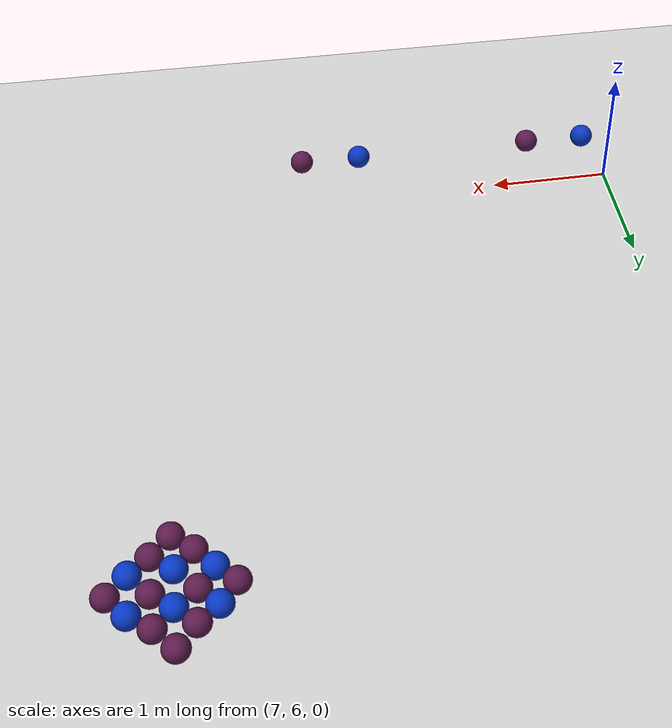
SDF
<sdf version="1.7">
 <world name="default">
  <model name="ground_plane">
   <static>1</static>
   <link name="link">
    <collision name="collision">
     <geometry><plane><normal>0 0 1</normal><size>100 100</size></plane></geometry>
     <surface>
      <contact><collide_bitmask>65535</collide_bitmask></contact>
      <friction><ode><mu>100</mu><mu2>50</mu2></ode></friction>
     </surface>
    </collision>
    <visual name="visual">
     <cast_shadows>0</cast_shadows>
     <geometry><plane><normal>0 0 1</normal><size>100 100</size></plane></geometry>
     <material>
      <script><uri>file://media/materials/scripts/gazebo.material</uri><name>Gazebo/Grey</name></script>
     </material>
    </visual>
   </link>
  </model>
  <model name="ball_empty_clone_5">
   <link name="link_1">
    <inertial>
     <mass>1</mass>
     <inertia>
      <ixx>0.166667</ixx>
      <ixy>0</ixy>
      <ixz>0</ixz>
      <iyy>0.166667</iyy>
      <iyz>0</iyz>
      <izz>0.166667</izz>
     </inertia>
    </inertial>
    <visual name="visual">
     <geometry>
      <mesh>
       <uri>/home/entity014/abu2024_ws/src/abu_description/worlds/ball_empty.dae</uri>
       <scale>1 1 1</scale>
      </mesh>
     </geometry>
    </visual>
    <collision name="collision">
     <geometry>
      <mesh>
       <uri>/home/entity014/abu2024_ws/src/abu_description/worlds/ball_empty.dae</uri>
       <scale>1 1 1</scale>
      </mesh>
     </geometry>
     <surface>
      <friction>
       <ode><mu>1</mu><mu2>1</mu2><fdir1>0 0 0</fdir1><slip1>0</slip1><slip2>0</slip2></ode>
       <torsional>
        <coefficient>1</coefficient>
        <patch_radius>0</patch_radius>
        <surface_radius>0</surface_radius>
        <use_patch_radius>1</use_patch_radius>
        <ode><slip>0</slip></ode>
       </torsional>
      </friction>
      <bounce><restitution_coefficient>0</restitution_coefficient><threshold>1e+06</threshold></bounce>
      <contact>
       <collide_without_contact>0</collide_without_contact>
       <collide_without_contact_bitmask>1</collide_without_contact_bitmask>
       <collide_bitmask>1</collide_bitmask>
       <ode>
        <soft_cfm>0</soft_cfm>
        <soft_erp>0.2</soft_erp>
        <kp>1e+13</kp>
        <kd>1</kd>
        <max_vel>0.01</max_vel>
        <min_depth>0</min_depth>
       </ode>
       <bullet>
        <split_impulse>1</split_impulse>
        <split_impulse_penetration_threshold>-0.01</split_impulse_penetration_threshold>
        <soft_cfm>0</soft_cfm>
        <soft_erp>0.2</soft_erp>
        <kp>1e+13</kp>
        <kd>1</kd>
       </bullet>
      </contact>
     </surface>
    </collision>
   </link>
   <static>0</static>
   <pose>7.68401 5.79175 0.302543 -0.110681 -0.048625 -0.128901</pose>
  </model>
  <model name="ball_empty_clone_9">
   <link name="link_1">
    <inertial>
     <mass>1</mass>
     <inertia>
      <ixx>0.166667</ixx>
      <ixy>0</ixy>
      <ixz>0</ixz>
      <iyy>0.166667</iyy>
      <iyz>0</iyz>
      <izz>0.166667</izz>
     </inertia>
    </inertial>
    <visual name="visual">
     <geometry>
      <mesh>
       <uri>/home/entity014/abu2024_ws/src/abu_description/worlds/ball_empty.dae</uri>
       <scale>1 1 1</scale>
      </mesh>
     </geometry>
    </visual>
    <collision name="collision">
     <geometry>
      <mesh>
       <uri>/home/entity014/abu2024_ws/src/abu_description/worlds/ball_empty.dae</uri>
       <scale>1 1 1</scale>
      </mesh>
     </geometry>
     <surface>
      <friction>
       <ode><mu>1</mu><mu2>1</mu2><fdir1>0 0 0</fdir1><slip1>0</slip1><slip2>0</slip2></ode>
       <torsional>
        <coefficient>1</coefficient>
        <patch_radius>0</patch_radius>
        <surface_radius>0</surface_radius>
        <use_patch_radius>1</use_patch_radius>
        <ode><slip>0</slip></ode>
       </torsional>
      </friction>
      <bounce><restitution_coefficient>0</restitution_coefficient><threshold>1e+06</threshold></bounce>
      <contact>
       <collide_without_contact>0</collide_without_contact>
       <collide_without_contact_bitmask>1</collide_without_contact_bitmask>
       <collide_bitmask>1</collide_bitmask>
       <ode>
        <soft_cfm>0</soft_cfm>
        <soft_erp>0.2</soft_erp>
        <kp>1e+13</kp>
        <kd>1</kd>
        <max_vel>0.01</max_vel>
        <min_depth>0</min_depth>
       </ode>
       <bullet>
        <split_impulse>1</split_impulse>
        <split_impulse_penetration_threshold>-0.01</split_impulse_penetration_threshold>
        <soft_cfm>0</soft_cfm>
        <soft_erp>0.2</soft_erp>
        <kp>1e+13</kp>
        <kd>1</kd>
       </bullet>
      </contact>
     </surface>
    </collision>
   </link>
   <static>0</static>
   <pose>9.6825 5.79113 0.302549 -0.140097 0.339126 -0.093323</pose>
  </model>
  <model name="ball_blue">
   <link name="link_1">
    <inertial>
     <mass>1</mass>
     <inertia>
      <ixx>0.166667</ixx>
      <ixy>0</ixy>
      <ixz>0</ixz>
      <iyy>0.166667</iyy>
      <iyz>0</iyz>
      <izz>0.166667</izz>
     </inertia>
    </inertial>
    <visual name="visual">
     <geometry>
      <mesh>
       <uri>/home/entity014/abu2024_ws/src/abu_description/worlds/ball_blue.dae</uri>
       <scale>1 1 1</scale>
      </mesh>
     </geometry>
    </visual>
    <collision name="collision">
     <geometry>
      <mesh>
       <uri>/home/entity014/abu2024_ws/src/abu_description/worlds/ball_blue.dae</uri>
       <scale>1 1 1</scale>
      </mesh>
     </geometry>
     <surface>
      <friction>
       <ode><mu>1</mu><mu2>1</mu2><fdir1>0 0 0</fdir1><slip1>0</slip1><slip2>0</slip2></ode>
       <torsional>
        <coefficient>1</coefficient>
        <patch_radius>0</patch_radius>
        <surface_radius>0</surface_radius>
        <use_patch_radius>1</use_patch_radius>
        <ode><slip>0</slip></ode>
       </torsional>
      </friction>
      <bounce><restitution_coefficient>0</restitution_coefficient><threshold>1e+06</threshold></bounce>
      <contact>
       <collide_without_contact>0</collide_without_contact>
       <collide_without_contact_bitmask>1</collide_without_contact_bitmask>
       <collide_bitmask>1</collide_bitmask>
       <ode>
        <soft_cfm>0</soft_cfm>
        <soft_erp>0.2</soft_erp>
        <kp>1e+13</kp>
        <kd>1</kd>
        <max_vel>0.01</max_vel>
        <min_depth>0</min_depth>
       </ode>
       <bullet>
        <split_impulse>1</split_impulse>
        <split_impulse_penetration_threshold>-0.01</split_impulse_penetration_threshold>
        <soft_cfm>0</soft_cfm>
        <soft_erp>0.2</soft_erp>
        <kp>1e+13</kp>
        <kd>1</kd>
       </bullet>
      </contact>
     </surface>
    </collision>
   </link>
   <static>0</static>
   <pose>7.18296 5.79373 0.302552 0.094885 -0.071424 0.035462</pose>
  </model>
  <model name="ball_blue_4">
   <link name="link_1">
    <inertial>
     <mass>1</mass>
     <inertia>
      <ixx>0.166667</ixx>
      <ixy>0</ixy>
      <ixz>0</ixz>
      <iyy>0.166667</iyy>
      <iyz>0</iyz>
      <izz>0.166667</izz>
     </inertia>
    </inertial>
    <visual name="visual">
     <geometry>
      <mesh>
       <uri>/home/entity014/abu2024_ws/src/abu_description/worlds/ball_blue.dae</uri>
       <scale>1 1 1</scale>
      </mesh>
     </geometry>
    </visual>
    <collision name="collision">
     <geometry>
      <mesh>
       <uri>/home/entity014/abu2024_ws/src/abu_description/worlds/ball_blue.dae</uri>
       <scale>1 1 1</scale>
      </mesh>
     </geometry>
     <surface>
      <friction>
       <ode><mu>1</mu><mu2>1</mu2><fdir1>0 0 0</fdir1><slip1>0</slip1><slip2>0</slip2></ode>
       <torsional>
        <coefficient>1</coefficient>
        <patch_radius>0</patch_radius>
        <surface_radius>0</surface_radius>
        <use_patch_radius>1</use_patch_radius>
        <ode><slip>0</slip></ode>
       </torsional>
      </friction>
      <bounce><restitution_coefficient>0</restitution_coefficient><threshold>1e+06</threshold></bounce>
      <contact>
       <collide_without_contact>0</collide_without_contact>
       <collide_without_contact_bitmask>1</collide_without_contact_bitmask>
       <collide_bitmask>1</collide_bitmask>
       <ode>
        <soft_cfm>0</soft_cfm>
        <soft_erp>0.2</soft_erp>
        <kp>1e+13</kp>
        <kd>1</kd>
        <max_vel>0.01</max_vel>
        <min_depth>0</min_depth>
       </ode>
       <bullet>
        <split_impulse>1</split_impulse>
        <split_impulse_penetration_threshold>-0.01</split_impulse_penetration_threshold>
        <soft_cfm>0</soft_cfm>
        <soft_erp>0.2</soft_erp>
        <kp>1e+13</kp>
        <kd>1</kd>
       </bullet>
      </contact>
     </surface>
    </collision>
   </link>
   <static>0</static>
   <pose>9.18428 5.79164 0.302585 0.186038 0.031234 -0.476511</pose>
  </model>
  <model name="ball_empty_0">
   <link name="link_1">
    <inertial>
     <mass>1</mass>
     <inertia>
      <ixx>0.166667</ixx>
      <ixy>0</ixy>
      <ixz>0</ixz>
      <iyy>0.166667</iyy>
      <iyz>0</iyz>
      <izz>0.166667</izz>
     </inertia>
    </inertial>
    <visual name="visual">
     <geometry>
      <mesh>
       <uri>/home/entity014/abu2024_ws/src/abu_description/worlds/ball_empty.dae</uri>
       <scale>1 1 1</scale>
      </mesh>
     </geometry>
    </visual>
    <collision name="collision">
     <geometry>
      <mesh>
       <uri>/home/entity014/abu2024_ws/src/abu_description/worlds/ball_empty.dae</uri>
       <scale>1 1 1</scale>
      </mesh>
     </geometry>
     <surface>
      <friction>
       <ode><mu>1</mu><mu2>1</mu2><fdir1>0 0 0</fdir1><slip1>0</slip1><slip2>0</slip2></ode>
       <torsional>
        <coefficient>1</coefficient>
        <patch_radius>0</patch_radius>
        <surface_radius>0</surface_radius>
        <use_patch_radius>1</use_patch_radius>
        <ode><slip>0</slip></ode>
       </torsional>
      </friction>
      <bounce><restitution_coefficient>0</restitution_coefficient><threshold>1e+06</threshold></bounce>
      <contact>
       <collide_without_contact>0</collide_without_contact>
       <collide_without_contact_bitmask>1</collide_without_contact_bitmask>
       <collide_bitmask>1</collide_bitmask>
       <ode>
        <soft_cfm>0</soft_cfm>
        <soft_erp>0.2</soft_erp>
        <kp>1e+13</kp>
        <kd>1</kd>
        <max_vel>0.01</max_vel>
        <min_depth>0</min_depth>
       </ode>
       <bullet>
        <split_impulse>1</split_impulse>
        <split_impulse_penetration_threshold>-0.01</split_impulse_penetration_threshold>
        <soft_cfm>0</soft_cfm>
        <soft_erp>0.2</soft_erp>
        <kp>1e+13</kp>
        <kd>1</kd>
       </bullet>
      </contact>
     </surface>
    </collision>
   </link>
   <static>0</static>
   <pose>10.9343 9.60797 0.32261 0.227736 -0.021857 -0.010014</pose>
  </model>
  <model name="ball_blue_5">
   <link name="link_1">
    <inertial>
     <mass>1</mass>
     <inertia>
      <ixx>0.166667</ixx>
      <ixy>0</ixy>
      <ixz>0</ixz>
      <iyy>0.166667</iyy>
      <iyz>0</iyz>
      <izz>0.166667</izz>
     </inertia>
    </inertial>
    <visual name="visual">
     <geometry>
      <mesh>
       <uri>/home/entity014/abu2024_ws/src/abu_description/worlds/ball_blue.dae</uri>
       <scale>1 1 1</scale>
      </mesh>
     </geometry>
    </visual>
    <collision name="collision">
     <geometry>
      <mesh>
       <uri>/home/entity014/abu2024_ws/src/abu_description/worlds/ball_blue.dae</uri>
       <scale>1 1 1</scale>
      </mesh>
     </geometry>
     <surface>
      <friction>
       <ode><mu>1</mu><mu2>1</mu2><fdir1>0 0 0</fdir1><slip1>0</slip1><slip2>0</slip2></ode>
       <torsional>
        <coefficient>1</coefficient>
        <patch_radius>0</patch_radius>
        <surface_radius>0</surface_radius>
        <use_patch_radius>1</use_patch_radius>
        <ode><slip>0</slip></ode>
       </torsional>
      </friction>
      <bounce><restitution_coefficient>0</restitution_coefficient><threshold>1e+06</threshold></bounce>
      <contact>
       <collide_without_contact>0</collide_without_contact>
       <collide_without_contact_bitmask>1</collide_without_contact_bitmask>
       <collide_bitmask>1</collide_bitmask>
       <ode>
        <soft_cfm>0</soft_cfm>
        <soft_erp>0.2</soft_erp>
        <kp>1e+13</kp>
        <kd>1</kd>
        <max_vel>0.01</max_vel>
        <min_depth>0</min_depth>
       </ode>
       <bullet>
        <split_impulse>1</split_impulse>
        <split_impulse_penetration_threshold>-0.01</split_impulse_penetration_threshold>
        <soft_cfm>0</soft_cfm>
        <soft_erp>0.2</soft_erp>
        <kp>1e+13</kp>
        <kd>1</kd>
       </bullet>
      </contact>
     </surface>
    </collision>
   </link>
   <static>0</static>
   <pose>11.2218 9.87692 0.322593 0.184334 0.014428 -0.040587</pose>
  </model>
  <model name="ball_empty_0_clone">
   <link name="link_1">
    <inertial>
     <mass>1</mass>
     <inertia>
      <ixx>0.166667</ixx>
      <ixy>0</ixy>
      <ixz>0</ixz>
      <iyy>0.166667</iyy>
      <iyz>0</iyz>
      <izz>0.166667</izz>
     </inertia>
    </inertial>
    <visual name="visual">
     <geometry>
      <mesh>
       <uri>/home/entity014/abu2024_ws/src/abu_description/worlds/ball_empty.dae</uri>
       <scale>1 1 1</scale>
      </mesh>
     </geometry>
    </visual>
    <collision name="collision">
     <geometry>
      <mesh>
       <uri>/home/entity014/abu2024_ws/src/abu_description/worlds/ball_empty.dae</uri>
       <scale>1 1 1</scale>
      </mesh>
     </geometry>
     <surface>
      <friction>
       <ode><mu>1</mu><mu2>1</mu2><fdir1>0 0 0</fdir1><slip1>0</slip1><slip2>0</slip2></ode>
       <torsional>
        <coefficient>1</coefficient>
        <patch_radius>0</patch_radius>
        <surface_radius>0</surface_radius>
        <use_patch_radius>1</use_patch_radius>
        <ode><slip>0</slip></ode>
       </torsional>
      </friction>
      <bounce><restitution_coefficient>0</restitution_coefficient><threshold>1e+06</threshold></bounce>
      <contact>
       <collide_without_contact>0</collide_without_contact>
       <collide_without_contact_bitmask>1</collide_without_contact_bitmask>
       <collide_bitmask>1</collide_bitmask>
       <ode>
        <soft_cfm>0</soft_cfm>
        <soft_erp>0.2</soft_erp>
        <kp>1e+13</kp>
        <kd>1</kd>
        <max_vel>0.01</max_vel>
        <min_depth>0</min_depth>
       </ode>
       <bullet>
        <split_impulse>1</split_impulse>
        <split_impulse_penetration_threshold>-0.01</split_impulse_penetration_threshold>
        <soft_cfm>0</soft_cfm>
        <soft_erp>0.2</soft_erp>
        <kp>1e+13</kp>
        <kd>1</kd>
       </bullet>
      </contact>
     </surface>
    </collision>
   </link>
   <static>0</static>
   <pose>10.7866 9.73567 0.322547 0.200436 -0.000117 0.009581</pose>
  </model>
  <model name="ball_empty_0_clone_0">
   <link name="link_1">
    <inertial>
     <mass>1</mass>
     <inertia>
      <ixx>0.166667</ixx>
      <ixy>0</ixy>
      <ixz>0</ixz>
      <iyy>0.166667</iyy>
      <iyz>0</iyz>
      <izz>0.166667</izz>
     </inertia>
    </inertial>
    <visual name="visual">
     <geometry>
      <mesh>
       <uri>/home/entity014/abu2024_ws/src/abu_description/worlds/ball_empty.dae</uri>
       <scale>1 1 1</scale>
      </mesh>
     </geometry>
    </visual>
    <collision name="collision">
     <geometry>
      <mesh>
       <uri>/home/entity014/abu2024_ws/src/abu_description/worlds/ball_empty.dae</uri>
       <scale>1 1 1</scale>
      </mesh>
     </geometry>
     <surface>
      <friction>
       <ode><mu>1</mu><mu2>1</mu2><fdir1>0 0 0</fdir1><slip1>0</slip1><slip2>0</slip2></ode>
       <torsional>
        <coefficient>1</coefficient>
        <patch_radius>0</patch_radius>
        <surface_radius>0</surface_radius>
        <use_patch_radius>1</use_patch_radius>
        <ode><slip>0</slip></ode>
       </torsional>
      </friction>
      <bounce><restitution_coefficient>0</restitution_coefficient><threshold>1e+06</threshold></bounce>
      <contact>
       <collide_without_contact>0</collide_without_contact>
       <collide_without_contact_bitmask>1</collide_without_contact_bitmask>
       <collide_bitmask>1</collide_bitmask>
       <ode>
        <soft_cfm>0</soft_cfm>
        <soft_erp>0.2</soft_erp>
        <kp>1e+13</kp>
        <kd>1</kd>
        <max_vel>0.01</max_vel>
        <min_depth>0</min_depth>
       </ode>
       <bullet>
        <split_impulse>1</split_impulse>
        <split_impulse_penetration_threshold>-0.01</split_impulse_penetration_threshold>
        <soft_cfm>0</soft_cfm>
        <soft_erp>0.2</soft_erp>
        <kp>1e+13</kp>
        <kd>1</kd>
       </bullet>
      </contact>
     </surface>
    </collision>
   </link>
   <static>0</static>
   <pose>11.0763 9.75498 0.322573 0.038859 0.024224 0.040431</pose>
  </model>
  <model name="ball_empty_0_clone_1">
   <link name="link_1">
    <inertial>
     <mass>1</mass>
     <inertia>
      <ixx>0.166667</ixx>
      <ixy>0</ixy>
      <ixz>0</ixz>
      <iyy>0.166667</iyy>
      <iyz>0</iyz>
      <izz>0.166667</izz>
     </inertia>
    </inertial>
    <visual name="visual">
     <geometry>
      <mesh>
       <uri>/home/entity014/abu2024_ws/src/abu_description/worlds/ball_empty.dae</uri>
       <scale>1 1 1</scale>
      </mesh>
     </geometry>
    </visual>
    <collision name="collision">
     <geometry>
      <mesh>
       <uri>/home/entity014/abu2024_ws/src/abu_description/worlds/ball_empty.dae</uri>
       <scale>1 1 1</scale>
      </mesh>
     </geometry>
     <surface>
      <friction>
       <ode><mu>1</mu><mu2>1</mu2><fdir1>0 0 0</fdir1><slip1>0</slip1><slip2>0</slip2></ode>
       <torsional>
        <coefficient>1</coefficient>
        <patch_radius>0</patch_radius>
        <surface_radius>0</surface_radius>
        <use_patch_radius>1</use_patch_radius>
        <ode><slip>0</slip></ode>
       </torsional>
      </friction>
      <bounce><restitution_coefficient>0</restitution_coefficient><threshold>1e+06</threshold></bounce>
      <contact>
       <collide_without_contact>0</collide_without_contact>
       <collide_without_contact_bitmask>1</collide_without_contact_bitmask>
       <collide_bitmask>1</collide_bitmask>
       <ode>
        <soft_cfm>0</soft_cfm>
        <soft_erp>0.2</soft_erp>
        <kp>1e+13</kp>
        <kd>1</kd>
        <max_vel>0.01</max_vel>
        <min_depth>0</min_depth>
       </ode>
       <bullet>
        <split_impulse>1</split_impulse>
        <split_impulse_penetration_threshold>-0.01</split_impulse_penetration_threshold>
        <soft_cfm>0</soft_cfm>
        <soft_erp>0.2</soft_erp>
        <kp>1e+13</kp>
        <kd>1</kd>
       </bullet>
      </contact>
     </surface>
    </collision>
   </link>
   <static>0</static>
   <pose>10.5186 10.0179 0.32258 0.303791 0.171598 0.360455</pose>
  </model>
  <model name="ball_empty_0_clone_2">
   <link name="link_1">
    <inertial>
     <mass>1</mass>
     <inertia>
      <ixx>0.166667</ixx>
      <ixy>0</ixy>
      <ixz>0</ixz>
      <iyy>0.166667</iyy>
      <iyz>0</iyz>
      <izz>0.166667</izz>
     </inertia>
    </inertial>
    <visual name="visual">
     <geometry>
      <mesh>
       <uri>/home/entity014/abu2024_ws/src/abu_description/worlds/ball_empty.dae</uri>
       <scale>1 1 1</scale>
      </mesh>
     </geometry>
    </visual>
    <collision name="collision">
     <geometry>
      <mesh>
       <uri>/home/entity014/abu2024_ws/src/abu_description/worlds/ball_empty.dae</uri>
       <scale>1 1 1</scale>
      </mesh>
     </geometry>
     <surface>
      <friction>
       <ode><mu>1</mu><mu2>1</mu2><fdir1>0 0 0</fdir1><slip1>0</slip1><slip2>0</slip2></ode>
       <torsional>
        <coefficient>1</coefficient>
        <patch_radius>0</patch_radius>
        <surface_radius>0</surface_radius>
        <use_patch_radius>1</use_patch_radius>
        <ode><slip>0</slip></ode>
       </torsional>
      </friction>
      <bounce><restitution_coefficient>0</restitution_coefficient><threshold>1e+06</threshold></bounce>
      <contact>
       <collide_without_contact>0</collide_without_contact>
       <collide_without_contact_bitmask>1</collide_without_contact_bitmask>
       <collide_bitmask>1</collide_bitmask>
       <ode>
        <soft_cfm>0</soft_cfm>
        <soft_erp>0.2</soft_erp>
        <kp>1e+13</kp>
        <kd>1</kd>
        <max_vel>0.01</max_vel>
        <min_depth>0</min_depth>
       </ode>
       <bullet>
        <split_impulse>1</split_impulse>
        <split_impulse_penetration_threshold>-0.01</split_impulse_penetration_threshold>
        <soft_cfm>0</soft_cfm>
        <soft_erp>0.2</soft_erp>
        <kp>1e+13</kp>
        <kd>1</kd>
       </bullet>
      </contact>
     </surface>
    </collision>
   </link>
   <static>0</static>
   <pose>10.7722 10.04 0.322577 -0.068108 -0.111801 0.417252</pose>
  </model>
  <model name="ball_empty_0_clone_3">
   <link name="link_1">
    <inertial>
     <mass>1</mass>
     <inertia>
      <ixx>0.166667</ixx>
      <ixy>0</ixy>
      <ixz>0</ixz>
      <iyy>0.166667</iyy>
      <iyz>0</iyz>
      <izz>0.166667</izz>
     </inertia>
    </inertial>
    <visual name="visual">
     <geometry>
      <mesh>
       <uri>/home/entity014/abu2024_ws/src/abu_description/worlds/ball_empty.dae</uri>
       <scale>1 1 1</scale>
      </mesh>
     </geometry>
    </visual>
    <collision name="collision">
     <geometry>
      <mesh>
       <uri>/home/entity014/abu2024_ws/src/abu_description/worlds/ball_empty.dae</uri>
       <scale>1 1 1</scale>
      </mesh>
     </geometry>
     <surface>
      <friction>
       <ode><mu>1</mu><mu2>1</mu2><fdir1>0 0 0</fdir1><slip1>0</slip1><slip2>0</slip2></ode>
       <torsional>
        <coefficient>1</coefficient>
        <patch_radius>0</patch_radius>
        <surface_radius>0</surface_radius>
        <use_patch_radius>1</use_patch_radius>
        <ode><slip>0</slip></ode>
       </torsional>
      </friction>
      <bounce><restitution_coefficient>0</restitution_coefficient><threshold>1e+06</threshold></bounce>
      <contact>
       <collide_without_contact>0</collide_without_contact>
       <collide_without_contact_bitmask>1</collide_without_contact_bitmask>
       <collide_bitmask>1</collide_bitmask>
       <ode>
        <soft_cfm>0</soft_cfm>
        <soft_erp>0.2</soft_erp>
        <kp>1e+13</kp>
        <kd>1</kd>
        <max_vel>0.01</max_vel>
        <min_depth>0</min_depth>
       </ode>
       <bullet>
        <split_impulse>1</split_impulse>
        <split_impulse_penetration_threshold>-0.01</split_impulse_penetration_threshold>
        <soft_cfm>0</soft_cfm>
        <soft_erp>0.2</soft_erp>
        <kp>1e+13</kp>
        <kd>1</kd>
       </bullet>
      </contact>
     </surface>
    </collision>
   </link>
   <static>0</static>
   <pose>11.0776 10.0397 0.322621 -0.080378 0.01208 -0.597924</pose>
  </model>
  <model name="ball_empty_0_clone_4">
   <link name="link_1">
    <inertial>
     <mass>1</mass>
     <inertia>
      <ixx>0.166667</ixx>
      <ixy>0</ixy>
      <ixz>0</ixz>
      <iyy>0.166667</iyy>
      <iyz>0</iyz>
      <izz>0.166667</izz>
     </inertia>
    </inertial>
    <visual name="visual">
     <geometry>
      <mesh>
       <uri>/home/entity014/abu2024_ws/src/abu_description/worlds/ball_empty.dae</uri>
       <scale>1 1 1</scale>
      </mesh>
     </geometry>
    </visual>
    <collision name="collision">
     <geometry>
      <mesh>
       <uri>/home/entity014/abu2024_ws/src/abu_description/worlds/ball_empty.dae</uri>
       <scale>1 1 1</scale>
      </mesh>
     </geometry>
     <surface>
      <friction>
       <ode><mu>1</mu><mu2>1</mu2><fdir1>0 0 0</fdir1><slip1>0</slip1><slip2>0</slip2></ode>
       <torsional>
        <coefficient>1</coefficient>
        <patch_radius>0</patch_radius>
        <surface_radius>0</surface_radius>
        <use_patch_radius>1</use_patch_radius>
        <ode><slip>0</slip></ode>
       </torsional>
      </friction>
      <bounce><restitution_coefficient>0</restitution_coefficient><threshold>1e+06</threshold></bounce>
      <contact>
       <collide_without_contact>0</collide_without_contact>
       <collide_without_contact_bitmask>1</collide_without_contact_bitmask>
       <collide_bitmask>1</collide_bitmask>
       <ode>
        <soft_cfm>0</soft_cfm>
        <soft_erp>0.2</soft_erp>
        <kp>1e+13</kp>
        <kd>1</kd>
        <max_vel>0.01</max_vel>
        <min_depth>0</min_depth>
       </ode>
       <bullet>
        <split_impulse>1</split_impulse>
        <split_impulse_penetration_threshold>-0.01</split_impulse_penetration_threshold>
        <soft_cfm>0</soft_cfm>
        <soft_erp>0.2</soft_erp>
        <kp>1e+13</kp>
        <kd>1</kd>
       </bullet>
      </contact>
     </surface>
    </collision>
   </link>
   <static>0</static>
   <pose>11.3629 10.0231 0.322621 0.146358 0.065282 -0.056291</pose>
  </model>
  <model name="ball_empty_0_clone_5">
   <link name="link_1">
    <inertial>
     <mass>1</mass>
     <inertia>
      <ixx>0.166667</ixx>
      <ixy>0</ixy>
      <ixz>0</ixz>
      <iyy>0.166667</iyy>
      <iyz>0</iyz>
      <izz>0.166667</izz>
     </inertia>
    </inertial>
    <visual name="visual">
     <geometry>
      <mesh>
       <uri>/home/entity014/abu2024_ws/src/abu_description/worlds/ball_empty.dae</uri>
       <scale>1 1 1</scale>
      </mesh>
     </geometry>
    </visual>
    <collision name="collision">
     <geometry>
      <mesh>
       <uri>/home/entity014/abu2024_ws/src/abu_description/worlds/ball_empty.dae</uri>
       <scale>1 1 1</scale>
      </mesh>
     </geometry>
     <surface>
      <friction>
       <ode><mu>1</mu><mu2>1</mu2><fdir1>0 0 0</fdir1><slip1>0</slip1><slip2>0</slip2></ode>
       <torsional>
        <coefficient>1</coefficient>
        <patch_radius>0</patch_radius>
        <surface_radius>0</surface_radius>
        <use_patch_radius>1</use_patch_radius>
        <ode><slip>0</slip></ode>
       </torsional>
      </friction>
      <bounce><restitution_coefficient>0</restitution_coefficient><threshold>1e+06</threshold></bounce>
      <contact>
       <collide_without_contact>0</collide_without_contact>
       <collide_without_contact_bitmask>1</collide_without_contact_bitmask>
       <collide_bitmask>1</collide_bitmask>
       <ode>
        <soft_cfm>0</soft_cfm>
        <soft_erp>0.2</soft_erp>
        <kp>1e+13</kp>
        <kd>1</kd>
        <max_vel>0.01</max_vel>
        <min_depth>0</min_depth>
       </ode>
       <bullet>
        <split_impulse>1</split_impulse>
        <split_impulse_penetration_threshold>-0.01</split_impulse_penetration_threshold>
        <soft_cfm>0</soft_cfm>
        <soft_erp>0.2</soft_erp>
        <kp>1e+13</kp>
        <kd>1</kd>
       </bullet>
      </contact>
     </surface>
    </collision>
   </link>
   <static>0</static>
   <pose>10.7882 10.2927 0.322551 0.279821 0.000523 -0.034451</pose>
  </model>
  <model name="ball_empty_0_clone_6">
   <link name="link_1">
    <inertial>
     <mass>1</mass>
     <inertia>
      <ixx>0.166667</ixx>
      <ixy>0</ixy>
      <ixz>0</ixz>
      <iyy>0.166667</iyy>
      <iyz>0</iyz>
      <izz>0.166667</izz>
     </inertia>
    </inertial>
    <visual name="visual">
     <geometry>
      <mesh>
       <uri>/home/entity014/abu2024_ws/src/abu_description/worlds/ball_empty.dae</uri>
       <scale>1 1 1</scale>
      </mesh>
     </geometry>
    </visual>
    <collision name="collision">
     <geometry>
      <mesh>
       <uri>/home/entity014/abu2024_ws/src/abu_description/worlds/ball_empty.dae</uri>
       <scale>1 1 1</scale>
      </mesh>
     </geometry>
     <surface>
      <friction>
       <ode><mu>1</mu><mu2>1</mu2><fdir1>0 0 0</fdir1><slip1>0</slip1><slip2>0</slip2></ode>
       <torsional>
        <coefficient>1</coefficient>
        <patch_radius>0</patch_radius>
        <surface_radius>0</surface_radius>
        <use_patch_radius>1</use_patch_radius>
        <ode><slip>0</slip></ode>
       </torsional>
      </friction>
      <bounce><restitution_coefficient>0</restitution_coefficient><threshold>1e+06</threshold></bounce>
      <contact>
       <collide_without_contact>0</collide_without_contact>
       <collide_without_contact_bitmask>1</collide_without_contact_bitmask>
       <collide_bitmask>1</collide_bitmask>
       <ode>
        <soft_cfm>0</soft_cfm>
        <soft_erp>0.2</soft_erp>
        <kp>1e+13</kp>
        <kd>1</kd>
        <max_vel>0.01</max_vel>
        <min_depth>0</min_depth>
       </ode>
       <bullet>
        <split_impulse>1</split_impulse>
        <split_impulse_penetration_threshold>-0.01</split_impulse_penetration_threshold>
        <soft_cfm>0</soft_cfm>
        <soft_erp>0.2</soft_erp>
        <kp>1e+13</kp>
        <kd>1</kd>
       </bullet>
      </contact>
     </surface>
    </collision>
   </link>
   <static>0</static>
   <pose>11.0689 10.2973 0.322602 0.259236 0.013411 0.094171</pose>
  </model>
  <model name="ball_empty_0_clone_7">
   <link name="link_1">
    <inertial>
     <mass>1</mass>
     <inertia>
      <ixx>0.166667</ixx>
      <ixy>0</ixy>
      <ixz>0</ixz>
      <iyy>0.166667</iyy>
      <iyz>0</iyz>
      <izz>0.166667</izz>
     </inertia>
    </inertial>
    <visual name="visual">
     <geometry>
      <mesh>
       <uri>/home/entity014/abu2024_ws/src/abu_description/worlds/ball_empty.dae</uri>
       <scale>1 1 1</scale>
      </mesh>
     </geometry>
    </visual>
    <collision name="collision">
     <geometry>
      <mesh>
       <uri>/home/entity014/abu2024_ws/src/abu_description/worlds/ball_empty.dae</uri>
       <scale>1 1 1</scale>
      </mesh>
     </geometry>
     <surface>
      <friction>
       <ode><mu>1</mu><mu2>1</mu2><fdir1>0 0 0</fdir1><slip1>0</slip1><slip2>0</slip2></ode>
       <torsional>
        <coefficient>1</coefficient>
        <patch_radius>0</patch_radius>
        <surface_radius>0</surface_radius>
        <use_patch_radius>1</use_patch_radius>
        <ode><slip>0</slip></ode>
       </torsional>
      </friction>
      <bounce><restitution_coefficient>0</restitution_coefficient><threshold>1e+06</threshold></bounce>
      <contact>
       <collide_without_contact>0</collide_without_contact>
       <collide_without_contact_bitmask>1</collide_without_contact_bitmask>
       <collide_bitmask>1</collide_bitmask>
       <ode>
        <soft_cfm>0</soft_cfm>
        <soft_erp>0.2</soft_erp>
        <kp>1e+13</kp>
        <kd>1</kd>
        <max_vel>0.01</max_vel>
        <min_depth>0</min_depth>
       </ode>
       <bullet>
        <split_impulse>1</split_impulse>
        <split_impulse_penetration_threshold>-0.01</split_impulse_penetration_threshold>
        <soft_cfm>0</soft_cfm>
        <soft_erp>0.2</soft_erp>
        <kp>1e+13</kp>
        <kd>1</kd>
       </bullet>
      </contact>
     </surface>
    </collision>
   </link>
   <static>0</static>
   <pose>10.9261 10.4574 0.322614 0.012139 -0.000611 -5e-06</pose>
  </model>
  <model name="ball_blue_5_clone">
   <link name="link_1">
    <inertial>
     <mass>1</mass>
     <inertia>
      <ixx>0.166667</ixx>
      <ixy>0</ixy>
      <ixz>0</ixz>
      <iyy>0.166667</iyy>
      <iyz>0</iyz>
      <izz>0.166667</izz>
     </inertia>
    </inertial>
    <visual name="visual">
     <geometry>
      <mesh>
       <uri>/home/entity014/abu2024_ws/src/abu_description/worlds/ball_blue.dae</uri>
       <scale>1 1 1</scale>
      </mesh>
     </geometry>
    </visual>
    <collision name="collision">
     <geometry>
      <mesh>
       <uri>/home/entity014/abu2024_ws/src/abu_description/worlds/ball_blue.dae</uri>
       <scale>1 1 1</scale>
      </mesh>
     </geometry>
     <surface>
      <friction>
       <ode><mu>1</mu><mu2>1</mu2><fdir1>0 0 0</fdir1><slip1>0</slip1><slip2>0</slip2></ode>
       <torsional>
        <coefficient>1</coefficient>
        <patch_radius>0</patch_radius>
        <surface_radius>0</surface_radius>
        <use_patch_radius>1</use_patch_radius>
        <ode><slip>0</slip></ode>
       </torsional>
      </friction>
      <bounce><restitution_coefficient>0</restitution_coefficient><threshold>1e+06</threshold></bounce>
      <contact>
       <collide_without_contact>0</collide_without_contact>
       <collide_without_contact_bitmask>1</collide_without_contact_bitmask>
       <collide_bitmask>1</collide_bitmask>
       <ode>
        <soft_cfm>0</soft_cfm>
        <soft_erp>0.2</soft_erp>
        <kp>1e+13</kp>
        <kd>1</kd>
        <max_vel>0.01</max_vel>
        <min_depth>0</min_depth>
       </ode>
       <bullet>
        <split_impulse>1</split_impulse>
        <split_impulse_penetration_threshold>-0.01</split_impulse_penetration_threshold>
        <soft_cfm>0</soft_cfm>
        <soft_erp>0.2</soft_erp>
        <kp>1e+13</kp>
        <kd>1</kd>
       </bullet>
      </contact>
     </surface>
    </collision>
   </link>
   <static>0</static>
   <pose>10.9224 9.87361 0.322569 0.20734 -0.02525 0.111681</pose>
  </model>
  <model name="ball_blue_5_clone_0">
   <link name="link_1">
    <inertial>
     <mass>1</mass>
     <inertia>
      <ixx>0.166667</ixx>
      <ixy>0</ixy>
      <ixz>0</ixz>
      <iyy>0.166667</iyy>
      <iyz>0</iyz>
      <izz>0.166667</izz>
     </inertia>
    </inertial>
    <visual name="visual">
     <geometry>
      <mesh>
       <uri>/home/entity014/abu2024_ws/src/abu_description/worlds/ball_blue.dae</uri>
       <scale>1 1 1</scale>
      </mesh>
     </geometry>
    </visual>
    <collision name="collision">
     <geometry>
      <mesh>
       <uri>/home/entity014/abu2024_ws/src/abu_description/worlds/ball_blue.dae</uri>
       <scale>1 1 1</scale>
      </mesh>
     </geometry>
     <surface>
      <friction>
       <ode><mu>1</mu><mu2>1</mu2><fdir1>0 0 0</fdir1><slip1>0</slip1><slip2>0</slip2></ode>
       <torsional>
        <coefficient>1</coefficient>
        <patch_radius>0</patch_radius>
        <surface_radius>0</surface_radius>
        <use_patch_radius>1</use_patch_radius>
        <ode><slip>0</slip></ode>
       </torsional>
      </friction>
      <bounce><restitution_coefficient>0</restitution_coefficient><threshold>1e+06</threshold></bounce>
      <contact>
       <collide_without_contact>0</collide_without_contact>
       <collide_without_contact_bitmask>1</collide_without_contact_bitmask>
       <collide_bitmask>1</collide_bitmask>
       <ode>
        <soft_cfm>0</soft_cfm>
        <soft_erp>0.2</soft_erp>
        <kp>1e+13</kp>
        <kd>1</kd>
        <max_vel>0.01</max_vel>
        <min_depth>0</min_depth>
       </ode>
       <bullet>
        <split_impulse>1</split_impulse>
        <split_impulse_penetration_threshold>-0.01</split_impulse_penetration_threshold>
        <soft_cfm>0</soft_cfm>
        <soft_erp>0.2</soft_erp>
        <kp>1e+13</kp>
        <kd>1</kd>
       </bullet>
      </contact>
     </surface>
    </collision>
   </link>
   <static>0</static>
   <pose>10.6547 9.8856 0.322539 0.276387 0.237831 -0.056578</pose>
  </model>
  <model name="ball_blue_5_clone_1">
   <link name="link_1">
    <inertial>
     <mass>1</mass>
     <inertia>
      <ixx>0.166667</ixx>
      <ixy>0</ixy>
      <ixz>0</ixz>
      <iyy>0.166667</iyy>
      <iyz>0</iyz>
      <izz>0.166667</izz>
     </inertia>
    </inertial>
    <visual name="visual">
     <geometry>
      <mesh>
       <uri>/home/entity014/abu2024_ws/src/abu_description/worlds/ball_blue.dae</uri>
       <scale>1 1 1</scale>
      </mesh>
     </geometry>
    </visual>
    <collision name="collision">
     <geometry>
      <mesh>
       <uri>/home/entity014/abu2024_ws/src/abu_description/worlds/ball_blue.dae</uri>
       <scale>1 1 1</scale>
      </mesh>
     </geometry>
     <surface>
      <friction>
       <ode><mu>1</mu><mu2>1</mu2><fdir1>0 0 0</fdir1><slip1>0</slip1><slip2>0</slip2></ode>
       <torsional>
        <coefficient>1</coefficient>
        <patch_radius>0</patch_radius>
        <surface_radius>0</surface_radius>
        <use_patch_radius>1</use_patch_radius>
        <ode><slip>0</slip></ode>
       </torsional>
      </friction>
      <bounce><restitution_coefficient>0</restitution_coefficient><threshold>1e+06</threshold></bounce>
      <contact>
       <collide_without_contact>0</collide_without_contact>
       <collide_without_contact_bitmask>1</collide_without_contact_bitmask>
       <collide_bitmask>1</collide_bitmask>
       <ode>
        <soft_cfm>0</soft_cfm>
        <soft_erp>0.2</soft_erp>
        <kp>1e+13</kp>
        <kd>1</kd>
        <max_vel>0.01</max_vel>
        <min_depth>0</min_depth>
       </ode>
       <bullet>
        <split_impulse>1</split_impulse>
        <split_impulse_penetration_threshold>-0.01</split_impulse_penetration_threshold>
        <soft_cfm>0</soft_cfm>
        <soft_erp>0.2</soft_erp>
        <kp>1e+13</kp>
        <kd>1</kd>
       </bullet>
      </contact>
     </surface>
    </collision>
   </link>
   <static>0</static>
   <pose>10.639 10.1752 0.32254 0.073122 -0.09425 0.048451</pose>
  </model>
  <model name="ball_blue_5_clone_2">
   <link name="link_1">
    <inertial>
     <mass>1</mass>
     <inertia>
      <ixx>0.166667</ixx>
      <ixy>0</ixy>
      <ixz>0</ixz>
      <iyy>0.166667</iyy>
      <iyz>0</iyz>
      <izz>0.166667</izz>
     </inertia>
    </inertial>
    <visual name="visual">
     <geometry>
      <mesh>
       <uri>/home/entity014/abu2024_ws/src/abu_description/worlds/ball_blue.dae</uri>
       <scale>1 1 1</scale>
      </mesh>
     </geometry>
    </visual>
    <collision name="collision">
     <geometry>
      <mesh>
       <uri>/home/entity014/abu2024_ws/src/abu_description/worlds/ball_blue.dae</uri>
       <scale>1 1 1</scale>
      </mesh>
     </geometry>
     <surface>
      <friction>
       <ode><mu>1</mu><mu2>1</mu2><fdir1>0 0 0</fdir1><slip1>0</slip1><slip2>0</slip2></ode>
       <torsional>
        <coefficient>1</coefficient>
        <patch_radius>0</patch_radius>
        <surface_radius>0</surface_radius>
        <use_patch_radius>1</use_patch_radius>
        <ode><slip>0</slip></ode>
       </torsional>
      </friction>
      <bounce><restitution_coefficient>0</restitution_coefficient><threshold>1e+06</threshold></bounce>
      <contact>
       <collide_without_contact>0</collide_without_contact>
       <collide_without_contact_bitmask>1</collide_without_contact_bitmask>
       <collide_bitmask>1</collide_bitmask>
       <ode>
        <soft_cfm>0</soft_cfm>
        <soft_erp>0.2</soft_erp>
        <kp>1e+13</kp>
        <kd>1</kd>
        <max_vel>0.01</max_vel>
        <min_depth>0</min_depth>
       </ode>
       <bullet>
        <split_impulse>1</split_impulse>
        <split_impulse_penetration_threshold>-0.01</split_impulse_penetration_threshold>
        <soft_cfm>0</soft_cfm>
        <soft_erp>0.2</soft_erp>
        <kp>1e+13</kp>
        <kd>1</kd>
       </bullet>
      </contact>
     </surface>
    </collision>
   </link>
   <static>0</static>
   <pose>10.9296 10.1607 0.322547 0.179275 -0.094052 0.077054</pose>
  </model>
  <model name="ball_blue_5_clone_3">
   <link name="link_1">
    <inertial>
     <mass>1</mass>
     <inertia>
      <ixx>0.166667</ixx>
      <ixy>0</ixy>
      <ixz>0</ixz>
      <iyy>0.166667</iyy>
      <iyz>0</iyz>
      <izz>0.166667</izz>
     </inertia>
    </inertial>
    <visual name="visual">
     <geometry>
      <mesh>
       <uri>/home/entity014/abu2024_ws/src/abu_description/worlds/ball_blue.dae</uri>
       <scale>1 1 1</scale>
      </mesh>
     </geometry>
    </visual>
    <collision name="collision">
     <geometry>
      <mesh>
       <uri>/home/entity014/abu2024_ws/src/abu_description/worlds/ball_blue.dae</uri>
       <scale>1 1 1</scale>
      </mesh>
     </geometry>
     <surface>
      <friction>
       <ode><mu>1</mu><mu2>1</mu2><fdir1>0 0 0</fdir1><slip1>0</slip1><slip2>0</slip2></ode>
       <torsional>
        <coefficient>1</coefficient>
        <patch_radius>0</patch_radius>
        <surface_radius>0</surface_radius>
        <use_patch_radius>1</use_patch_radius>
        <ode><slip>0</slip></ode>
       </torsional>
      </friction>
      <bounce><restitution_coefficient>0</restitution_coefficient><threshold>1e+06</threshold></bounce>
      <contact>
       <collide_without_contact>0</collide_without_contact>
       <collide_without_contact_bitmask>1</collide_without_contact_bitmask>
       <collide_bitmask>1</collide_bitmask>
       <ode>
        <soft_cfm>0</soft_cfm>
        <soft_erp>0.2</soft_erp>
        <kp>1e+13</kp>
        <kd>1</kd>
        <max_vel>0.01</max_vel>
        <min_depth>0</min_depth>
       </ode>
       <bullet>
        <split_impulse>1</split_impulse>
        <split_impulse_penetration_threshold>-0.01</split_impulse_penetration_threshold>
        <soft_cfm>0</soft_cfm>
        <soft_erp>0.2</soft_erp>
        <kp>1e+13</kp>
        <kd>1</kd>
       </bullet>
      </contact>
     </surface>
    </collision>
   </link>
   <static>0</static>
   <pose>11.2287 10.1787 0.322568 0.000106 0.271658 -0.111079</pose>
  </model>
 </world>
</sdf>
